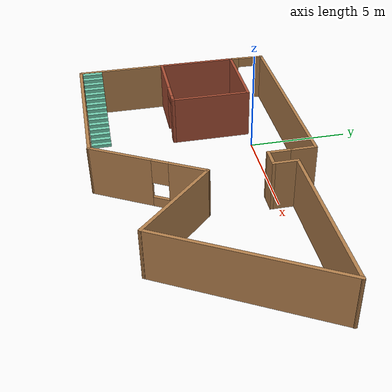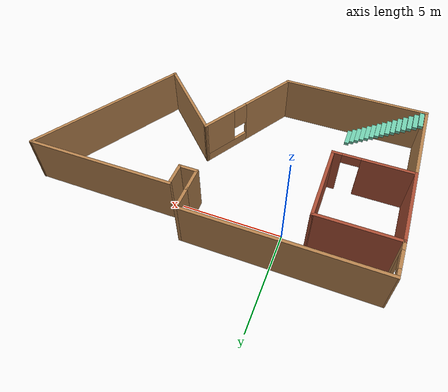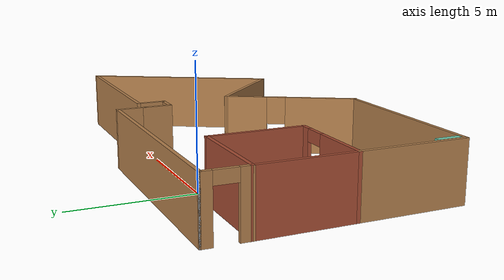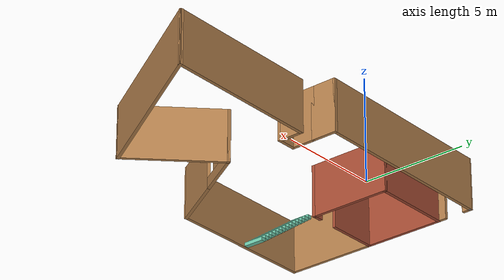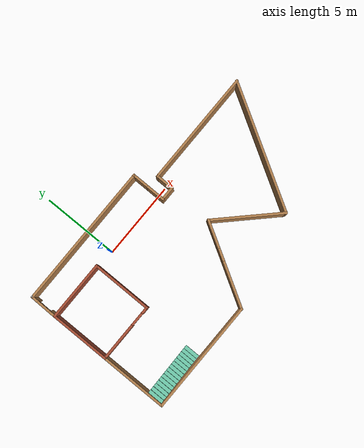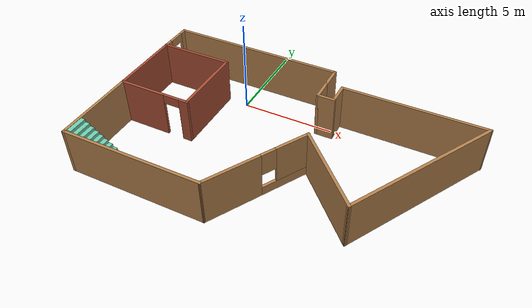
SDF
<?xml version='1.0'?>
<sdf version='1.7'>
  <model name='Building'>
    <pose>3.7698 -3.19808 0 0 -0 0</pose>
    <link name='Stairs_3'>
      <visual name='Stairs_3_Visual_0'>
        <pose>-5.32922 -4.35034 0.083333 0 -0 -1.5708</pose>
        <geometry>
          <box>
            <size>1 0.233333 0.166667</size>
          </box>
        </geometry>
        <material>
          <script>
            <uri>file://media/materials/scripts/gazebo.material</uri>
            <name>Gazebo/Grey</name>
          </script>
          <ambient>0.435294 0.796078 0.67451 1</ambient>
        </material>
        <meta>
          <layer>0</layer>
        </meta>
      </visual>
      <collision name='Stairs_3_Collision_0'>
        <geometry>
          <box>
            <size>1 0.233333 0.166667</size>
          </box>
        </geometry>
        <pose>-5.32922 -4.35034 0.083333 0 -0 -1.5708</pose>
      </collision>
      <visual name='Stairs_3_Visual_1'>
        <pose>-5.56255 -4.35034 0.25 0 -0 -1.5708</pose>
        <geometry>
          <box>
            <size>1 0.233333 0.166667</size>
          </box>
        </geometry>
        <material>
          <script>
            <uri>file://media/materials/scripts/gazebo.material</uri>
            <name>Gazebo/Grey</name>
          </script>
          <ambient>0.435294 0.796078 0.67451 1</ambient>
        </material>
        <meta>
          <layer>0</layer>
        </meta>
      </visual>
      <collision name='Stairs_3_Collision_1'>
        <geometry>
          <box>
            <size>1 0.233333 0.166667</size>
          </box>
        </geometry>
        <pose>-5.56255 -4.35034 0.25 0 -0 -1.5708</pose>
      </collision>
      <visual name='Stairs_3_Visual_2'>
        <pose>-5.79589 -4.35034 0.416667 0 -0 -1.5708</pose>
        <geometry>
          <box>
            <size>1 0.233333 0.166667</size>
          </box>
        </geometry>
        <material>
          <script>
            <uri>file://media/materials/scripts/gazebo.material</uri>
            <name>Gazebo/Grey</name>
          </script>
          <ambient>0.435294 0.796078 0.67451 1</ambient>
        </material>
        <meta>
          <layer>0</layer>
        </meta>
      </visual>
      <collision name='Stairs_3_Collision_2'>
        <geometry>
          <box>
            <size>1 0.233333 0.166667</size>
          </box>
        </geometry>
        <pose>-5.79589 -4.35034 0.416667 0 -0 -1.5708</pose>
      </collision>
      <visual name='Stairs_3_Visual_3'>
        <pose>-6.02922 -4.35034 0.583333 0 -0 -1.5708</pose>
        <geometry>
          <box>
            <size>1 0.233333 0.166667</size>
          </box>
        </geometry>
        <material>
          <script>
            <uri>file://media/materials/scripts/gazebo.material</uri>
            <name>Gazebo/Grey</name>
          </script>
          <ambient>0.435294 0.796078 0.67451 1</ambient>
        </material>
        <meta>
          <layer>0</layer>
        </meta>
      </visual>
      <collision name='Stairs_3_Collision_3'>
        <geometry>
          <box>
            <size>1 0.233333 0.166667</size>
          </box>
        </geometry>
        <pose>-6.02922 -4.35034 0.583333 0 -0 -1.5708</pose>
      </collision>
      <visual name='Stairs_3_Visual_4'>
        <pose>-6.26255 -4.35034 0.75 0 -0 -1.5708</pose>
        <geometry>
          <box>
            <size>1 0.233333 0.166667</size>
          </box>
        </geometry>
        <material>
          <script>
            <uri>file://media/materials/scripts/gazebo.material</uri>
            <name>Gazebo/Grey</name>
          </script>
          <ambient>0.435294 0.796078 0.67451 1</ambient>
        </material>
        <meta>
          <layer>0</layer>
        </meta>
      </visual>
      <collision name='Stairs_3_Collision_4'>
        <geometry>
          <box>
            <size>1 0.233333 0.166667</size>
          </box>
        </geometry>
        <pose>-6.26255 -4.35034 0.75 0 -0 -1.5708</pose>
      </collision>
      <visual name='Stairs_3_Visual_5'>
        <pose>-6.49589 -4.35034 0.916667 0 -0 -1.5708</pose>
        <geometry>
          <box>
            <size>1 0.233333 0.166667</size>
          </box>
        </geometry>
        <material>
          <script>
            <uri>file://media/materials/scripts/gazebo.material</uri>
            <name>Gazebo/Grey</name>
          </script>
          <ambient>0.435294 0.796078 0.67451 1</ambient>
        </material>
        <meta>
          <layer>0</layer>
        </meta>
      </visual>
      <collision name='Stairs_3_Collision_5'>
        <geometry>
          <box>
            <size>1 0.233333 0.166667</size>
          </box>
        </geometry>
        <pose>-6.49589 -4.35034 0.916667 0 -0 -1.5708</pose>
      </collision>
      <visual name='Stairs_3_Visual_6'>
        <pose>-6.72922 -4.35034 1.08333 0 -0 -1.5708</pose>
        <geometry>
          <box>
            <size>1 0.233333 0.166667</size>
          </box>
        </geometry>
        <material>
          <script>
            <uri>file://media/materials/scripts/gazebo.material</uri>
            <name>Gazebo/Grey</name>
          </script>
          <ambient>0.435294 0.796078 0.67451 1</ambient>
        </material>
        <meta>
          <layer>0</layer>
        </meta>
      </visual>
      <collision name='Stairs_3_Collision_6'>
        <geometry>
          <box>
            <size>1 0.233333 0.166667</size>
          </box>
        </geometry>
        <pose>-6.72922 -4.35034 1.08333 0 -0 -1.5708</pose>
      </collision>
      <visual name='Stairs_3_Visual_7'>
        <pose>-6.96255 -4.35034 1.25 0 -0 -1.5708</pose>
        <geometry>
          <box>
            <size>1 0.233333 0.166667</size>
          </box>
        </geometry>
        <material>
          <script>
            <uri>file://media/materials/scripts/gazebo.material</uri>
            <name>Gazebo/Grey</name>
          </script>
          <ambient>0.435294 0.796078 0.67451 1</ambient>
        </material>
        <meta>
          <layer>0</layer>
        </meta>
      </visual>
      <collision name='Stairs_3_Collision_7'>
        <geometry>
          <box>
            <size>1 0.233333 0.166667</size>
          </box>
        </geometry>
        <pose>-6.96255 -4.35034 1.25 0 -0 -1.5708</pose>
      </collision>
      <visual name='Stairs_3_Visual_8'>
        <pose>-7.19589 -4.35034 1.41667 0 -0 -1.5708</pose>
        <geometry>
          <box>
            <size>1 0.233333 0.166667</size>
          </box>
        </geometry>
        <material>
          <script>
            <uri>file://media/materials/scripts/gazebo.material</uri>
            <name>Gazebo/Grey</name>
          </script>
          <ambient>0.435294 0.796078 0.67451 1</ambient>
        </material>
        <meta>
          <layer>0</layer>
        </meta>
      </visual>
      <collision name='Stairs_3_Collision_8'>
        <geometry>
          <box>
            <size>1 0.233333 0.166667</size>
          </box>
        </geometry>
        <pose>-7.19589 -4.35034 1.41667 0 -0 -1.5708</pose>
      </collision>
      <visual name='Stairs_3_Visual_9'>
        <pose>-7.42922 -4.35034 1.58333 0 -0 -1.5708</pose>
        <geometry>
          <box>
            <size>1 0.233333 0.166667</size>
          </box>
        </geometry>
        <material>
          <script>
            <uri>file://media/materials/scripts/gazebo.material</uri>
            <name>Gazebo/Grey</name>
          </script>
          <ambient>0.435294 0.796078 0.67451 1</ambient>
        </material>
        <meta>
          <layer>0</layer>
        </meta>
      </visual>
      <collision name='Stairs_3_Collision_9'>
        <geometry>
          <box>
            <size>1 0.233333 0.166667</size>
          </box>
        </geometry>
        <pose>-7.42922 -4.35034 1.58333 0 -0 -1.5708</pose>
      </collision>
      <visual name='Stairs_3_Visual_10'>
        <pose>-7.66255 -4.35034 1.75 0 -0 -1.5708</pose>
        <geometry>
          <box>
            <size>1 0.233333 0.166667</size>
          </box>
        </geometry>
        <material>
          <script>
            <uri>file://media/materials/scripts/gazebo.material</uri>
            <name>Gazebo/Grey</name>
          </script>
          <ambient>0.435294 0.796078 0.67451 1</ambient>
        </material>
        <meta>
          <layer>0</layer>
        </meta>
      </visual>
      <collision name='Stairs_3_Collision_10'>
        <geometry>
          <box>
            <size>1 0.233333 0.166667</size>
          </box>
        </geometry>
        <pose>-7.66255 -4.35034 1.75 0 -0 -1.5708</pose>
      </collision>
      <visual name='Stairs_3_Visual_11'>
        <pose>-7.89589 -4.35034 1.91667 0 -0 -1.5708</pose>
        <geometry>
          <box>
            <size>1 0.233333 0.166667</size>
          </box>
        </geometry>
        <material>
          <script>
            <uri>file://media/materials/scripts/gazebo.material</uri>
            <name>Gazebo/Grey</name>
          </script>
          <ambient>0.435294 0.796078 0.67451 1</ambient>
        </material>
        <meta>
          <layer>0</layer>
        </meta>
      </visual>
      <collision name='Stairs_3_Collision_11'>
        <geometry>
          <box>
            <size>1 0.233333 0.166667</size>
          </box>
        </geometry>
        <pose>-7.89589 -4.35034 1.91667 0 -0 -1.5708</pose>
      </collision>
      <visual name='Stairs_3_Visual_12'>
        <pose>-8.12922 -4.35034 2.08333 0 -0 -1.5708</pose>
        <geometry>
          <box>
            <size>1 0.233333 0.166667</size>
          </box>
        </geometry>
        <material>
          <script>
            <uri>file://media/materials/scripts/gazebo.material</uri>
            <name>Gazebo/Grey</name>
          </script>
          <ambient>0.435294 0.796078 0.67451 1</ambient>
        </material>
        <meta>
          <layer>0</layer>
        </meta>
      </visual>
      <collision name='Stairs_3_Collision_12'>
        <geometry>
          <box>
            <size>1 0.233333 0.166667</size>
          </box>
        </geometry>
        <pose>-8.12922 -4.35034 2.08333 0 -0 -1.5708</pose>
      </collision>
      <visual name='Stairs_3_Visual_13'>
        <pose>-8.36255 -4.35034 2.25 0 -0 -1.5708</pose>
        <geometry>
          <box>
            <size>1 0.233333 0.166667</size>
          </box>
        </geometry>
        <material>
          <script>
            <uri>file://media/materials/scripts/gazebo.material</uri>
            <name>Gazebo/Grey</name>
          </script>
          <ambient>0.435294 0.796078 0.67451 1</ambient>
        </material>
        <meta>
          <layer>0</layer>
        </meta>
      </visual>
      <collision name='Stairs_3_Collision_13'>
        <geometry>
          <box>
            <size>1 0.233333 0.166667</size>
          </box>
        </geometry>
        <pose>-8.36255 -4.35034 2.25 0 -0 -1.5708</pose>
      </collision>
      <visual name='Stairs_3_Visual_14'>
        <pose>-8.59589 -4.35034 2.41667 0 -0 -1.5708</pose>
        <geometry>
          <box>
            <size>1 0.233333 0.166667</size>
          </box>
        </geometry>
        <material>
          <script>
            <uri>file://media/materials/scripts/gazebo.material</uri>
            <name>Gazebo/Grey</name>
          </script>
          <ambient>0.435294 0.796078 0.67451 1</ambient>
        </material>
        <meta>
          <layer>0</layer>
        </meta>
      </visual>
      <collision name='Stairs_3_Collision_14'>
        <geometry>
          <box>
            <size>1 0.233333 0.166667</size>
          </box>
        </geometry>
        <pose>-8.59589 -4.35034 2.41667 0 -0 -1.5708</pose>
      </collision>
    </link>
    <link name='Wall_0'>
      <collision name='Wall_0_Collision'>
        <geometry>
          <box>
            <size>4 0.15 2.5</size>
          </box>
        </geometry>
        <pose>0 0 1.25 0 -0 0</pose>
      </collision>
      <visual name='Wall_0_Visual'>
        <pose>0 0 1.25 0 -0 0</pose>
        <geometry>
          <box>
            <size>4 0.15 2.5</size>
          </box>
        </geometry>
        <material>
          <script>
            <uri>file://media/materials/scripts/gazebo.material</uri>
            <name>Gazebo/Bricks</name>
          </script>
          <ambient>1 1 1 1</ambient>
        </material>
        <meta>
          <layer>0</layer>
        </meta>
      </visual>
      <pose>-8.80198 1.32395 0 0 -0 1.5708</pose>
    </link>
    <link name='Wall_10'>
      <collision name='Wall_10_Collision'>
        <geometry>
          <box>
            <size>8.5 0.15 2.5</size>
          </box>
        </geometry>
        <pose>0 0 1.25 0 -0 0</pose>
      </collision>
      <visual name='Wall_10_Visual'>
        <pose>0 0 1.25 0 -0 0</pose>
        <geometry>
          <box>
            <size>8.5 0.15 2.5</size>
          </box>
        </geometry>
        <material>
          <script>
            <uri>file://media/materials/scripts/gazebo.material</uri>
            <name>Gazebo/Wood</name>
          </script>
          <ambient>1 1 1 1</ambient>
        </material>
        <meta>
          <layer>0</layer>
        </meta>
      </visual>
      <pose>6.68821 0.261655 0 0 -0 1.0472</pose>
    </link>
    <link name='Wall_11'>
      <collision name='Wall_11_Collision'>
        <geometry>
          <box>
            <size>7.5 0.15 2.5</size>
          </box>
        </geometry>
        <pose>0 0 1.25 0 -0 0</pose>
      </collision>
      <visual name='Wall_11_Visual'>
        <pose>0 0 1.25 0 -0 0</pose>
        <geometry>
          <box>
            <size>7.5 0.15 2.5</size>
          </box>
        </geometry>
        <material>
          <script>
            <uri>file://media/materials/scripts/gazebo.material</uri>
            <name>Gazebo/Wood</name>
          </script>
          <ambient>1 1 1 1</ambient>
        </material>
        <meta>
          <layer>0</layer>
        </meta>
      </visual>
      <pose>5.10072 3.87731 0 0 -0 3.14159</pose>
    </link>
    <link name='Wall_12'>
      <collision name='Wall_12_Collision'>
        <geometry>
          <box>
            <size>1.25 0.15 2.5</size>
          </box>
        </geometry>
        <pose>0 0 1.25 0 -0 0</pose>
      </collision>
      <visual name='Wall_12_Visual'>
        <pose>0 0 1.25 0 -0 0</pose>
        <geometry>
          <box>
            <size>1.25 0.15 2.5</size>
          </box>
        </geometry>
        <material>
          <script>
            <uri>file://media/materials/scripts/gazebo.material</uri>
            <name>Gazebo/Wood</name>
          </script>
          <ambient>1 1 1 1</ambient>
        </material>
        <meta>
          <layer>0</layer>
        </meta>
      </visual>
      <pose>1.42572 3.32731 0 0 -0 -1.5708</pose>
    </link>
    <link name='Wall_13'>
      <collision name='Wall_13_Collision'>
        <geometry>
          <box>
            <size>1 0.15 2.5</size>
          </box>
        </geometry>
        <pose>0 0 1.25 0 -0 0</pose>
      </collision>
      <visual name='Wall_13_Visual'>
        <pose>0 0 1.25 0 -0 0</pose>
        <geometry>
          <box>
            <size>1 0.15 2.5</size>
          </box>
        </geometry>
        <material>
          <script>
            <uri>file://media/materials/scripts/gazebo.material</uri>
            <name>Gazebo/Wood</name>
          </script>
          <ambient>1 1 1 1</ambient>
        </material>
        <meta>
          <layer>0</layer>
        </meta>
      </visual>
      <pose>1.00072 2.77731 0 0 -0 3.14159</pose>
    </link>
    <link name='Wall_14'>
      <collision name='Wall_14_Collision'>
        <geometry>
          <box>
            <size>1.25 0.15 2.5</size>
          </box>
        </geometry>
        <pose>0 0 1.25 0 -0 0</pose>
      </collision>
      <visual name='Wall_14_Visual'>
        <pose>0 0 1.25 0 -0 0</pose>
        <geometry>
          <box>
            <size>1.25 0.15 2.5</size>
          </box>
        </geometry>
        <material>
          <script>
            <uri>file://media/materials/scripts/gazebo.material</uri>
            <name>Gazebo/Wood</name>
          </script>
          <ambient>1 1 1 1</ambient>
        </material>
        <meta>
          <layer>0</layer>
        </meta>
      </visual>
      <pose>0.575715 3.32731 0 0 -0 1.5708</pose>
    </link>
    <link name='Wall_15'>
      <collision name='Wall_15_Collision'>
        <geometry>
          <box>
            <size>1.25 0.15 2.5</size>
          </box>
        </geometry>
        <pose>0 0 1.25 0 -0 0</pose>
      </collision>
      <visual name='Wall_15_Visual'>
        <pose>0 0 1.25 0 -0 0</pose>
        <geometry>
          <box>
            <size>1.25 0.15 2.5</size>
          </box>
        </geometry>
        <material>
          <script>
            <uri>file://media/materials/scripts/gazebo.material</uri>
            <name>Gazebo/Wood</name>
          </script>
          <ambient>1 1 1 1</ambient>
        </material>
        <meta>
          <layer>0</layer>
        </meta>
      </visual>
      <pose>0.575715 4.42731 0 0 -0 1.5708</pose>
    </link>
    <link name='Wall_16'>
      <collision name='Wall_16_Collision'>
        <geometry>
          <box>
            <size>9.5 0.15 2.5</size>
          </box>
        </geometry>
        <pose>0 0 1.25 0 -0 0</pose>
      </collision>
      <visual name='Wall_16_Visual'>
        <pose>0 0 1.25 0 -0 0</pose>
        <geometry>
          <box>
            <size>9.5 0.15 2.5</size>
          </box>
        </geometry>
        <material>
          <script>
            <uri>file://media/materials/scripts/gazebo.material</uri>
            <name>Gazebo/Wood</name>
          </script>
          <ambient>1 1 1 1</ambient>
        </material>
        <meta>
          <layer>0</layer>
        </meta>
      </visual>
      <pose>-4.09929 4.97731 0 0 -0 3.14159</pose>
    </link>
    <link name='Wall_18'>
      <collision name='Wall_18_Collision'>
        <geometry>
          <box>
            <size>0.15 0.15 2.5</size>
          </box>
        </geometry>
        <pose>0 0 1.25 0 -0 0</pose>
      </collision>
      <visual name='Wall_18_Visual'>
        <pose>0 0 1.25 0 -0 0</pose>
        <geometry>
          <box>
            <size>0.15 0.15 2.5</size>
          </box>
        </geometry>
        <material>
          <script>
            <uri>file://media/materials/scripts/gazebo.material</uri>
            <name>Gazebo/Grey</name>
          </script>
          <ambient>1 1 1 1</ambient>
        </material>
        <meta>
          <layer>0</layer>
        </meta>
      </visual>
      <pose>-8.77429 4.97731 0 0 -0 0</pose>
    </link>
    <link name='Wall_2'>
      <collision name='Wall_2_Collision'>
        <geometry>
          <box>
            <size>4 0.15 2.5</size>
          </box>
        </geometry>
        <pose>0 0 1.25 0 -0 0</pose>
      </collision>
      <visual name='Wall_2_Visual'>
        <pose>0 0 1.25 0 -0 0</pose>
        <geometry>
          <box>
            <size>4 0.15 2.5</size>
          </box>
        </geometry>
        <material>
          <script>
            <uri>file://media/materials/scripts/gazebo.material</uri>
            <name>Gazebo/Bricks</name>
          </script>
          <ambient>1 1 1 1</ambient>
        </material>
        <meta>
          <layer>0</layer>
        </meta>
      </visual>
      <pose>-6.87698 3.24895 0 0 -0 0</pose>
    </link>
    <link name='Wall_3'>
      <collision name='Wall_3_Collision'>
        <geometry>
          <box>
            <size>4 0.15 2.5</size>
          </box>
        </geometry>
        <pose>0 0 1.25 0 -0 0</pose>
      </collision>
      <visual name='Wall_3_Visual'>
        <pose>0 0 1.25 0 -0 0</pose>
        <geometry>
          <box>
            <size>4 0.15 2.5</size>
          </box>
        </geometry>
        <material>
          <script>
            <uri>file://media/materials/scripts/gazebo.material</uri>
            <name>Gazebo/Bricks</name>
          </script>
          <ambient>1 1 1 1</ambient>
        </material>
        <meta>
          <layer>0</layer>
        </meta>
      </visual>
      <pose>-4.95198 1.32395 0 0 -0 -1.5708</pose>
    </link>
    <link name='Wall_36'>
      <pose>-8.78813 4.11313 0 0 -0 -1.58682</pose>
      <visual name='Wall_36_Visual_0'>
        <pose>-0.702164 0 1.25 0 -0 0</pose>
        <geometry>
          <box>
            <size>0.474256 0.15 2.5</size>
          </box>
        </geometry>
        <material>
          <script>
            <uri>file://media/materials/scripts/gazebo.material</uri>
            <name>Gazebo/Wood</name>
          </script>
          <ambient>1 1 1 1</ambient>
        </material>
        <meta>
          <layer>0</layer>
        </meta>
      </visual>
      <collision name='Wall_36_Collision_0'>
        <geometry>
          <box>
            <size>0.474256 0.15 2.5</size>
          </box>
        </geometry>
        <pose>-0.702164 0 1.25 0 -0 0</pose>
      </collision>
      <visual name='Wall_36_Visual_1'>
        <pose>0.687128 0 1.25 0 -0 0</pose>
        <geometry>
          <box>
            <size>0.504329 0.15 2.5</size>
          </box>
        </geometry>
        <material>
          <script>
            <uri>file://media/materials/scripts/gazebo.material</uri>
            <name>Gazebo/Wood</name>
          </script>
          <ambient>1 1 1 1</ambient>
        </material>
        <meta>
          <layer>0</layer>
        </meta>
      </visual>
      <collision name='Wall_36_Collision_1'>
        <geometry>
          <box>
            <size>0.504329 0.15 2.5</size>
          </box>
        </geometry>
        <pose>0.687128 0 1.25 0 -0 0</pose>
      </collision>
      <visual name='Wall_36_Visual_2'>
        <pose>-0.015036 0 2.25 0 -0 0</pose>
        <geometry>
          <box>
            <size>0.9 0.15 0.5</size>
          </box>
        </geometry>
        <material>
          <script>
            <uri>file://media/materials/scripts/gazebo.material</uri>
            <name>Gazebo/Wood</name>
          </script>
          <ambient>1 1 1 1</ambient>
        </material>
        <meta>
          <layer>0</layer>
        </meta>
      </visual>
      <collision name='Wall_36_Collision_2'>
        <geometry>
          <box>
            <size>0.9 0.15 0.5</size>
          </box>
        </geometry>
        <pose>-0.015036 0 2.25 0 -0 0</pose>
      </collision>
    </link>
    <link name='Wall_38'>
      <pose>-6.87698 -0.601052 0 0 -0 3.14159</pose>
      <visual name='Wall_38_Visual_0'>
        <pose>-1.74342 0 1.25 0 -0 0</pose>
        <geometry>
          <box>
            <size>0.513155 0.15 2.5</size>
          </box>
        </geometry>
        <material>
          <script>
            <uri>file://media/materials/scripts/gazebo.material</uri>
            <name>Gazebo/Bricks</name>
          </script>
          <ambient>1 1 1 1</ambient>
        </material>
        <meta>
          <layer>0</layer>
        </meta>
      </visual>
      <collision name='Wall_38_Collision_0'>
        <geometry>
          <box>
            <size>0.513155 0.15 2.5</size>
          </box>
        </geometry>
        <pose>-1.74342 0 1.25 0 -0 0</pose>
      </collision>
      <visual name='Wall_38_Visual_1'>
        <pose>0.706577 0 1.25 0 -0 0</pose>
        <geometry>
          <box>
            <size>2.58684 0.15 2.5</size>
          </box>
        </geometry>
        <material>
          <script>
            <uri>file://media/materials/scripts/gazebo.material</uri>
            <name>Gazebo/Bricks</name>
          </script>
          <ambient>1 1 1 1</ambient>
        </material>
        <meta>
          <layer>0</layer>
        </meta>
      </visual>
      <collision name='Wall_38_Collision_1'>
        <geometry>
          <box>
            <size>2.58684 0.15 2.5</size>
          </box>
        </geometry>
        <pose>0.706577 0 1.25 0 -0 0</pose>
      </collision>
      <visual name='Wall_38_Visual_2'>
        <pose>-1.03685 0 2.25 0 -0 0</pose>
        <geometry>
          <box>
            <size>0.9 0.15 0.5</size>
          </box>
        </geometry>
        <material>
          <script>
            <uri>file://media/materials/scripts/gazebo.material</uri>
            <name>Gazebo/Bricks</name>
          </script>
          <ambient>1 1 1 1</ambient>
        </material>
        <meta>
          <layer>0</layer>
        </meta>
      </visual>
      <collision name='Wall_38_Collision_2'>
        <geometry>
          <box>
            <size>0.9 0.15 0.5</size>
          </box>
        </geometry>
        <pose>-1.03685 0 2.25 0 -0 0</pose>
      </collision>
    </link>
    <link name='Wall_6'>
      <collision name='Wall_6_Collision'>
        <geometry>
          <box>
            <size>4.5 0.15 2.5</size>
          </box>
        </geometry>
        <pose>0 0 1.25 0 -0 0</pose>
      </collision>
      <visual name='Wall_6_Visual'>
        <pose>0 0 1.25 0 -0 0</pose>
        <geometry>
          <box>
            <size>4.5 0.15 2.5</size>
          </box>
        </geometry>
        <material>
          <script>
            <uri>file://media/materials/scripts/gazebo.material</uri>
            <name>Gazebo/Wood</name>
          </script>
          <ambient>1 1 1 1</ambient>
        </material>
        <meta>
          <layer>0</layer>
        </meta>
      </visual>
      <pose>-8.80198 -2.77605 0 0 -0 -1.5708</pose>
    </link>
    <link name='Wall_7'>
      <collision name='Wall_7_Collision'>
        <geometry>
          <box>
            <size>7.5 0.15 2.5</size>
          </box>
        </geometry>
        <pose>0 0 1.25 0 -0 0</pose>
      </collision>
      <visual name='Wall_7_Visual'>
        <pose>0 0 1.25 0 -0 0</pose>
        <geometry>
          <box>
            <size>7.5 0.15 2.5</size>
          </box>
        </geometry>
        <material>
          <script>
            <uri>file://media/materials/scripts/gazebo.material</uri>
            <name>Gazebo/Wood</name>
          </script>
          <ambient>1 1 1 1</ambient>
        </material>
        <meta>
          <layer>0</layer>
        </meta>
      </visual>
      <pose>-5.12698 -4.95105 0 0 -0 0</pose>
    </link>
    <link name='Wall_8'>
      <pose>-0.051976 -2.52618 0 0 -0 1.0472</pose>
      <visual name='Wall_8_Visual_0'>
        <pose>-1.33048 0 1.25 0 -0 0</pose>
        <geometry>
          <box>
            <size>3.08904 0.15 2.5</size>
          </box>
        </geometry>
        <material>
          <script>
            <uri>file://media/materials/scripts/gazebo.material</uri>
            <name>Gazebo/Wood</name>
          </script>
          <ambient>1 1 1 1</ambient>
        </material>
        <meta>
          <layer>0</layer>
        </meta>
      </visual>
      <collision name='Wall_8_Collision_0'>
        <geometry>
          <box>
            <size>3.08904 0.15 2.5</size>
          </box>
        </geometry>
        <pose>-1.33048 0 1.25 0 -0 0</pose>
      </collision>
      <visual name='Wall_8_Visual_1'>
        <pose>1.54452 0 0.25 0 -0 0</pose>
        <geometry>
          <box>
            <size>2.66096 0.15 0.5</size>
          </box>
        </geometry>
        <material>
          <script>
            <uri>file://media/materials/scripts/gazebo.material</uri>
            <name>Gazebo/Wood</name>
          </script>
          <ambient>1 1 1 1</ambient>
        </material>
        <meta>
          <layer>0</layer>
        </meta>
      </visual>
      <collision name='Wall_8_Collision_1'>
        <geometry>
          <box>
            <size>2.66096 0.15 0.5</size>
          </box>
        </geometry>
        <pose>1.54452 0 0.25 0 -0 0</pose>
      </collision>
      <visual name='Wall_8_Visual_2'>
        <pose>1.94452 0 1.5 0 -0 0</pose>
        <geometry>
          <box>
            <size>1.86096 0.15 2</size>
          </box>
        </geometry>
        <material>
          <script>
            <uri>file://media/materials/scripts/gazebo.material</uri>
            <name>Gazebo/Wood</name>
          </script>
          <ambient>1 1 1 1</ambient>
        </material>
        <meta>
          <layer>0</layer>
        </meta>
      </visual>
      <collision name='Wall_8_Collision_2'>
        <geometry>
          <box>
            <size>1.86096 0.15 2</size>
          </box>
        </geometry>
        <pose>1.94452 0 1.5 0 -0 0</pose>
      </collision>
      <visual name='Wall_8_Visual_3'>
        <pose>0.614037 0 1.9 0 -0 0</pose>
        <geometry>
          <box>
            <size>0.8 0.15 1.2</size>
          </box>
        </geometry>
        <material>
          <script>
            <uri>file://media/materials/scripts/gazebo.material</uri>
            <name>Gazebo/Wood</name>
          </script>
          <ambient>1 1 1 1</ambient>
        </material>
        <meta>
          <layer>0</layer>
        </meta>
      </visual>
      <collision name='Wall_8_Collision_3'>
        <geometry>
          <box>
            <size>0.8 0.15 1.2</size>
          </box>
        </geometry>
        <pose>0.614037 0 1.9 0 -0 0</pose>
      </collision>
    </link>
    <link name='Wall_9'>
      <collision name='Wall_9_Collision'>
        <geometry>
          <box>
            <size>4.75 0.15 2.5</size>
          </box>
        </geometry>
        <pose>0 0 1.25 0 -0 0</pose>
      </collision>
      <visual name='Wall_9_Visual'>
        <pose>0 0 1.25 0 -0 0</pose>
        <geometry>
          <box>
            <size>4.75 0.15 2.5</size>
          </box>
        </geometry>
        <material>
          <script>
            <uri>file://media/materials/scripts/gazebo.material</uri>
            <name>Gazebo/Wood</name>
          </script>
          <ambient>1 1 1 1</ambient>
        </material>
        <meta>
          <layer>0</layer>
        </meta>
      </visual>
      <pose>2.97437 -1.72765 0 0 -0 -0.785398</pose>
    </link>
    <static>1</static>
  </model>
</sdf>
